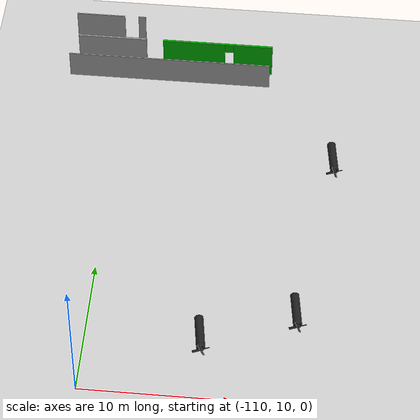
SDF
<sdf version="1.7">
 <world name="default">
  <model name="ground_plane">
   <static>1</static>
   <link name="link">
    <collision name="collision">
     <geometry><plane><normal>0 0 1</normal><size>100 100</size></plane></geometry>
     <surface><friction><ode><mu>100</mu><mu2>50</mu2></ode></friction></surface>
    </collision>
    <visual name="visual">
     <cast_shadows>0</cast_shadows>
     <geometry><plane><normal>0 0 1</normal><size>100 100</size></plane></geometry>
     <material>
      <script><uri>file://media/materials/scripts/gazebo.material</uri><name>Gazebo/Grey</name></script>
     </material>
    </visual>
   </link>
  </model>
  <model name="44444444443osrf_elevator_clone">
   <link name="Wall_10">
    <pose>3.11003 -4.9485 0 0 -0 0</pose>
    <visual name="Wall_10_Visual_0">
     <meta><layer>0</layer></meta>
     <pose>-1.73626 0 1.3715 0 -0 0</pose>
     <geometry><box><size>4.52747 0.15 2.743</size></box></geometry>
     <material>
      <script><uri>file://media/materials/scripts/gazebo.material</uri><name>Gazebo/Grey</name></script>
      <ambient>0 0.666667 0 1</ambient>
      <shader type="pixel"/>
     </material>
    </visual>
    <visual name="Wall_10_Visual_2">
     <meta><layer>0</layer></meta>
     <pose>0.85068 0 2.3715 0 -0 0</pose>
     <geometry><box><size>0.646413 0.15 0.743</size></box></geometry>
     <material>
      <script><uri>file://media/materials/scripts/gazebo.material</uri><name>Gazebo/Grey</name></script>
      <ambient>0 0.666667 0 1</ambient>
      <shader type="pixel"/>
     </material>
    </visual>
    <visual name="Wall_10_Visual_1">
     <meta><layer>0</layer></meta>
     <pose>2.58694 0 1.3715 0 -0 0</pose>
     <geometry><box><size>2.82611 0.15 2.743</size></box></geometry>
     <material>
      <script><uri>file://media/materials/scripts/gazebo.material</uri><name>Gazebo/Grey</name></script>
      <ambient>0 0.666667 0 1</ambient>
      <shader type="pixel"/>
     </material>
    </visual>
    <collision name="Wall_10_Collision_0">
     <pose>-1.73626 0 1.3715 0 -0 0</pose>
     <geometry><box><size>4.52747 0.15 2.743</size></box></geometry>
     <surface>
      <friction>
       <ode><mu>1</mu><mu2>1</mu2><fdir1>0 0 0</fdir1><slip1>0</slip1><slip2>0</slip2></ode>
       <torsional>
        <coefficient>1</coefficient>
        <patch_radius>0</patch_radius>
        <surface_radius>0</surface_radius>
        <use_patch_radius>1</use_patch_radius>
        <ode><slip>0</slip></ode>
       </torsional>
      </friction>
      <bounce><restitution_coefficient>0</restitution_coefficient><threshold>1e+06</threshold></bounce>
      <contact>
       <collide_without_contact>0</collide_without_contact>
       <collide_without_contact_bitmask>1</collide_without_contact_bitmask>
       <collide_bitmask>1</collide_bitmask>
       <ode>
        <soft_cfm>0</soft_cfm>
        <soft_erp>0.2</soft_erp>
        <kp>1e+13</kp>
        <kd>1</kd>
        <max_vel>0.01</max_vel>
        <min_depth>0</min_depth>
       </ode>
       <bullet>
        <split_impulse>1</split_impulse>
        <split_impulse_penetration_threshold>-0.01</split_impulse_penetration_threshold>
        <soft_cfm>0</soft_cfm>
        <soft_erp>0.2</soft_erp>
        <kp>1e+13</kp>
        <kd>1</kd>
       </bullet>
      </contact>
     </surface>
    </collision>
    <collision name="Wall_10_Collision_1">
     <pose>2.58694 0 1.3715 0 -0 0</pose>
     <geometry><box><size>2.82611 0.15 2.743</size></box></geometry>
     <surface>
      <friction>
       <ode><mu>1</mu><mu2>1</mu2><fdir1>0 0 0</fdir1><slip1>0</slip1><slip2>0</slip2></ode>
       <torsional>
        <coefficient>1</coefficient>
        <patch_radius>0</patch_radius>
        <surface_radius>0</surface_radius>
        <use_patch_radius>1</use_patch_radius>
        <ode><slip>0</slip></ode>
       </torsional>
      </friction>
      <bounce><restitution_coefficient>0</restitution_coefficient><threshold>1e+06</threshold></bounce>
      <contact>
       <collide_without_contact>0</collide_without_contact>
       <collide_without_contact_bitmask>1</collide_without_contact_bitmask>
       <collide_bitmask>1</collide_bitmask>
       <ode>
        <soft_cfm>0</soft_cfm>
        <soft_erp>0.2</soft_erp>
        <kp>1e+13</kp>
        <kd>1</kd>
        <max_vel>0.01</max_vel>
        <min_depth>0</min_depth>
       </ode>
       <bullet>
        <split_impulse>1</split_impulse>
        <split_impulse_penetration_threshold>-0.01</split_impulse_penetration_threshold>
        <soft_cfm>0</soft_cfm>
        <soft_erp>0.2</soft_erp>
        <kp>1e+13</kp>
        <kd>1</kd>
       </bullet>
      </contact>
     </surface>
    </collision>
    <collision name="Wall_10_Collision_2">
     <pose>0.85068 0 2.3715 0 -0 0</pose>
     <geometry><box><size>0.646413 0.15 0.743</size></box></geometry>
     <surface>
      <friction>
       <ode><mu>1</mu><mu2>1</mu2><fdir1>0 0 0</fdir1><slip1>0</slip1><slip2>0</slip2></ode>
       <torsional>
        <coefficient>1</coefficient>
        <patch_radius>0</patch_radius>
        <surface_radius>0</surface_radius>
        <use_patch_radius>1</use_patch_radius>
        <ode><slip>0</slip></ode>
       </torsional>
      </friction>
      <bounce><restitution_coefficient>0</restitution_coefficient><threshold>1e+06</threshold></bounce>
      <contact>
       <collide_without_contact>0</collide_without_contact>
       <collide_without_contact_bitmask>1</collide_without_contact_bitmask>
       <collide_bitmask>1</collide_bitmask>
       <ode>
        <soft_cfm>0</soft_cfm>
        <soft_erp>0.2</soft_erp>
        <kp>1e+13</kp>
        <kd>1</kd>
        <max_vel>0.01</max_vel>
        <min_depth>0</min_depth>
       </ode>
       <bullet>
        <split_impulse>1</split_impulse>
        <split_impulse_penetration_threshold>-0.01</split_impulse_penetration_threshold>
        <soft_cfm>0</soft_cfm>
        <soft_erp>0.2</soft_erp>
        <kp>1e+13</kp>
        <kd>1</kd>
       </bullet>
      </contact>
     </surface>
    </collision>
   </link>
   <link name="Wall_18">
    <pose>-4.61297 -4.9275 0 0 -0 3.14159</pose>
    <visual name="Wall_18_Visual">
     <meta><layer>0</layer></meta>
     <pose>0 0 1.3715 0 -0 0</pose>
     <geometry><box><size>5 0.15 2.743</size></box></geometry>
     <material>
      <script><uri>file://media/materials/scripts/gazebo.material</uri><name>Gazebo/Grey</name></script>
      <ambient>1 1 1 1</ambient>
      <shader type="pixel"/>
     </material>
    </visual>
    <collision name="Wall_18_Collision">
     <pose>0 0 1.3715 0 -0 0</pose>
     <geometry><box><size>5 0.15 2.743</size></box></geometry>
     <surface>
      <friction>
       <ode><mu>1</mu><mu2>1</mu2><fdir1>0 0 0</fdir1><slip1>0</slip1><slip2>0</slip2></ode>
       <torsional>
        <coefficient>1</coefficient>
        <patch_radius>0</patch_radius>
        <surface_radius>0</surface_radius>
        <use_patch_radius>1</use_patch_radius>
        <ode><slip>0</slip></ode>
       </torsional>
      </friction>
      <bounce><restitution_coefficient>0</restitution_coefficient><threshold>1e+06</threshold></bounce>
      <contact>
       <collide_without_contact>0</collide_without_contact>
       <collide_without_contact_bitmask>1</collide_without_contact_bitmask>
       <collide_bitmask>1</collide_bitmask>
       <ode>
        <soft_cfm>0</soft_cfm>
        <soft_erp>0.2</soft_erp>
        <kp>1e+13</kp>
        <kd>1</kd>
        <max_vel>0.01</max_vel>
        <min_depth>0</min_depth>
       </ode>
       <bullet>
        <split_impulse>1</split_impulse>
        <split_impulse_penetration_threshold>-0.01</split_impulse_penetration_threshold>
        <soft_cfm>0</soft_cfm>
        <soft_erp>0.2</soft_erp>
        <kp>1e+13</kp>
        <kd>1</kd>
       </bullet>
      </contact>
     </surface>
    </collision>
   </link>
   <link name="floor1_part10">
    <pose>-2.39225 -4.89435 3.85794 1.5708 -0 0</pose>
    <visual name="visual">
     <meta><layer>1</layer></meta>
     <geometry><box><size>0.519866 2.0998 0.078</size></box></geometry>
     <material><script><name>Gazebo/Grey</name><uri>__default__</uri></script><shader type="pixel"/></material>
    </visual>
    <collision name="collision">
     <geometry><box><size>0.519866 2.0998 0.078</size></box></geometry>
     <surface>
      <friction>
       <ode><mu>1</mu><mu2>1</mu2><fdir1>0 0 0</fdir1><slip1>0</slip1><slip2>0</slip2></ode>
       <torsional>
        <coefficient>1</coefficient>
        <patch_radius>0</patch_radius>
        <surface_radius>0</surface_radius>
        <use_patch_radius>1</use_patch_radius>
        <ode><slip>0</slip></ode>
       </torsional>
      </friction>
      <bounce><restitution_coefficient>0</restitution_coefficient><threshold>1e+06</threshold></bounce>
      <contact>
       <collide_without_contact>0</collide_without_contact>
       <collide_without_contact_bitmask>1</collide_without_contact_bitmask>
       <collide_bitmask>1</collide_bitmask>
       <ode>
        <soft_cfm>0</soft_cfm>
        <soft_erp>0.2</soft_erp>
        <kp>1e+13</kp>
        <kd>1</kd>
        <max_vel>0.01</max_vel>
        <min_depth>0</min_depth>
       </ode>
       <bullet>
        <split_impulse>1</split_impulse>
        <split_impulse_penetration_threshold>-0.01</split_impulse_penetration_threshold>
        <soft_cfm>0</soft_cfm>
        <soft_erp>0.2</soft_erp>
        <kp>1e+13</kp>
        <kd>1</kd>
       </bullet>
      </contact>
     </surface>
    </collision>
   </link>
   <link name="floor1_part8">
    <pose>0 -9 3.86461 1.5708 -0 0</pose>
    <visual name="visual">
     <meta><layer>1</layer></meta>
     <geometry><box><size>14.2592 2.0998 0.078</size></box></geometry>
     <material><script><name>Gazebo/Grey</name><uri>__default__</uri></script><shader type="pixel"/></material>
    </visual>
    <collision name="collision">
     <geometry><box><size>14.2592 2.0998 0.078</size></box></geometry>
     <surface>
      <friction>
       <ode><mu>1</mu><mu2>1</mu2><fdir1>0 0 0</fdir1><slip1>0</slip1><slip2>0</slip2></ode>
       <torsional>
        <coefficient>1</coefficient>
        <patch_radius>0</patch_radius>
        <surface_radius>0</surface_radius>
        <use_patch_radius>1</use_patch_radius>
        <ode><slip>0</slip></ode>
       </torsional>
      </friction>
      <bounce><restitution_coefficient>0</restitution_coefficient><threshold>1e+06</threshold></bounce>
      <contact>
       <collide_without_contact>0</collide_without_contact>
       <collide_without_contact_bitmask>1</collide_without_contact_bitmask>
       <collide_bitmask>1</collide_bitmask>
       <ode>
        <soft_cfm>0</soft_cfm>
        <soft_erp>0.2</soft_erp>
        <kp>1e+13</kp>
        <kd>1</kd>
        <max_vel>0.01</max_vel>
        <min_depth>0</min_depth>
       </ode>
       <bullet>
        <split_impulse>1</split_impulse>
        <split_impulse_penetration_threshold>-0.01</split_impulse_penetration_threshold>
        <soft_cfm>0</soft_cfm>
        <soft_erp>0.2</soft_erp>
        <kp>1e+13</kp>
        <kd>1</kd>
       </bullet>
      </contact>
     </surface>
    </collision>
   </link>
   <link name="floor1_part9">
    <pose>-5.36806 -4.90906 3.85794 1.5708 -0 0</pose>
    <visual name="visual">
     <meta><layer>1</layer></meta>
     <geometry><box><size>3.47446 2.0998 0.078</size></box></geometry>
     <material><script><name>Gazebo/Grey</name><uri>__default__</uri></script><shader type="pixel"/></material>
    </visual>
    <collision name="collision">
     <geometry><box><size>3.47446 2.0998 0.078</size></box></geometry>
     <surface>
      <friction>
       <ode><mu>1</mu><mu2>1</mu2><fdir1>0 0 0</fdir1><slip1>0</slip1><slip2>0</slip2></ode>
       <torsional>
        <coefficient>1</coefficient>
        <patch_radius>0</patch_radius>
        <surface_radius>0</surface_radius>
        <use_patch_radius>1</use_patch_radius>
        <ode><slip>0</slip></ode>
       </torsional>
      </friction>
      <bounce><restitution_coefficient>0</restitution_coefficient><threshold>1e+06</threshold></bounce>
      <contact>
       <collide_without_contact>0</collide_without_contact>
       <collide_without_contact_bitmask>1</collide_without_contact_bitmask>
       <collide_bitmask>1</collide_bitmask>
       <ode>
        <soft_cfm>0</soft_cfm>
        <soft_erp>0.2</soft_erp>
        <kp>1e+13</kp>
        <kd>1</kd>
        <max_vel>0.01</max_vel>
        <min_depth>0</min_depth>
       </ode>
       <bullet>
        <split_impulse>1</split_impulse>
        <split_impulse_penetration_threshold>-0.01</split_impulse_penetration_threshold>
        <soft_cfm>0</soft_cfm>
        <soft_erp>0.2</soft_erp>
        <kp>1e+13</kp>
        <kd>1</kd>
       </bullet>
      </contact>
     </surface>
    </collision>
   </link>
   <static>1</static>
   <pose>-106.496 44.2558 0 0 -0 0</pose>
  </model>
  <model name="submarine_sinking_0_clone_11">
   <pose>-102.269 13.8487 0.459063 1.5049 -0.300217 0.160875</pose>
   <link name="body">
    <pose>0 0 -1.07935 0 -0 0</pose>
    <inertial>
     <mass>1102.7</mass>
     <inertia><ixx>645.998</ixx><ixy>0</ixy><ixz>0</ixz><iyy>645.998</iyy><iyz>0</iyz><izz>49.6215</izz></inertia>
    </inertial>
    <visual name="body_visual">
     <geometry><cylinder><radius>0.3</radius><length>2.6</length></cylinder></geometry>
     <material>
      <script><uri>file://media/materials/scripts/gazebo.material</uri><name>Gazebo/Black</name></script>
     </material>
    </visual>
    <collision name="body_collision">
     <geometry><cylinder><radius>0.3</radius><length>2.6</length></cylinder></geometry>
    </collision>
    <visual name="spacer_visual">
     <pose>0 0 1.37855 0 -0 0</pose>
     <geometry><cylinder><radius>0.0933402</radius><length>0.127211</length></cylinder></geometry>
     <material>
      <script><uri>file://media/materials/scripts/gazebo.material</uri><name>Gazebo/Black</name></script>
     </material>
    </visual>
   </link>
   <link name="propeller">
    <pose>0 0 0.3455 3.14159 -0 0</pose>
    <inertial>
     <mass>25.2312</mass>
     <inertia><ixx>0.531907</ixx><ixy>0</ixy><ixz>0</ixz><iyy>0.531907</iyy><iyz>0</iyz><izz>1.0513</izz></inertia>
    </inertial>
    <visual name="blade1_visual">
     <pose>0.34334 0 0 0.785398 -0 0</pose>
     <geometry><box><size>0.5 0.154178 0.05455</size></box></geometry>
     <material>
      <script><uri>file://media/materials/scripts/gazebo.material</uri><name>Gazebo/Black</name></script>
     </material>
    </visual>
    <collision name="blade1_collision">
     <pose>0.34334 0 0 0.785398 -0 0</pose>
     <geometry><box><size>0.5 0.154178 0.05455</size></box></geometry>
    </collision>
    <visual name="blade2_visual">
     <pose>0 0.34334 0 0.785398 0 1.5708</pose>
     <geometry><box><size>0.5 0.154178 0.05455</size></box></geometry>
     <material>
      <script><uri>file://media/materials/scripts/gazebo.material</uri><name>Gazebo/Black</name></script>
     </material>
    </visual>
    <collision name="blade2_collision">
     <pose>0 0.34334 0 0.785398 0 1.5708</pose>
     <geometry><box><size>0.5 0.154178 0.05455</size></box></geometry>
    </collision>
    <visual name="blade3_visual">
     <pose>-0.34334 -0 0 -0.785398 0 0</pose>
     <geometry><box><size>0.5 0.154178 0.05455</size></box></geometry>
     <material>
      <script><uri>file://media/materials/scripts/gazebo.material</uri><name>Gazebo/Black</name></script>
     </material>
    </visual>
    <collision name="blade3_collision">
     <pose>-0.34334 -0 0 -0.785398 0 0</pose>
     <geometry><box><size>0.5 0.154178 0.05455</size></box></geometry>
    </collision>
    <visual name="blade4_visual">
     <pose>-0 -0.34334 0 -0.785398 -0 1.5708</pose>
     <geometry><box><size>0.5 0.154178 0.05455</size></box></geometry>
     <material>
      <script><uri>file://media/materials/scripts/gazebo.material</uri><name>Gazebo/Black</name></script>
     </material>
    </visual>
    <collision name="blade4_collision">
     <pose>-0 -0.34334 0 -0.785398 -0 1.5708</pose>
     <geometry><box><size>0.5 0.154178 0.05455</size></box></geometry>
    </collision>
   </link>
   <joint name="spinning_joint" type="revolute">
    <parent>body</parent>
    <child>propeller</child>
    <axis>
     <xyz expressed_in="__model__">0 0 1</xyz>
     <limit><lower>-1e+12</lower><upper>1e+12</upper><effort>-1</effort><velocity>-1</velocity></limit>
     <dynamics><spring_reference>0</spring_reference><spring_stiffness>0</spring_stiffness></dynamics>
    </axis>
   </joint>
   <plugin name="buoyancy" filename="libBuoyancyPlugin.so"><fluid_density>999.1026</fluid_density></plugin>
  </model>
  <model name="submarine_sinking_0_clone_12">
   <pose>-96.0943 16.2779 0.459061 1.5055 -0.269395 0.151633</pose>
   <link name="body">
    <pose>0 0 -1.07935 0 -0 0</pose>
    <inertial>
     <mass>1102.7</mass>
     <inertia><ixx>645.998</ixx><ixy>0</ixy><ixz>0</ixz><iyy>645.998</iyy><iyz>0</iyz><izz>49.6215</izz></inertia>
    </inertial>
    <visual name="body_visual">
     <geometry><cylinder><radius>0.3</radius><length>2.6</length></cylinder></geometry>
     <material>
      <script><uri>file://media/materials/scripts/gazebo.material</uri><name>Gazebo/Black</name></script>
     </material>
    </visual>
    <collision name="body_collision">
     <geometry><cylinder><radius>0.3</radius><length>2.6</length></cylinder></geometry>
    </collision>
    <visual name="spacer_visual">
     <pose>0 0 1.37855 0 -0 0</pose>
     <geometry><cylinder><radius>0.0933402</radius><length>0.127211</length></cylinder></geometry>
     <material>
      <script><uri>file://media/materials/scripts/gazebo.material</uri><name>Gazebo/Black</name></script>
     </material>
    </visual>
   </link>
   <link name="propeller">
    <pose>0 0 0.3455 3.14159 -0 0</pose>
    <inertial>
     <mass>25.2312</mass>
     <inertia><ixx>0.531907</ixx><ixy>0</ixy><ixz>0</ixz><iyy>0.531907</iyy><iyz>0</iyz><izz>1.0513</izz></inertia>
    </inertial>
    <visual name="blade1_visual">
     <pose>0.34334 0 0 0.785398 -0 0</pose>
     <geometry><box><size>0.5 0.154178 0.05455</size></box></geometry>
     <material>
      <script><uri>file://media/materials/scripts/gazebo.material</uri><name>Gazebo/Black</name></script>
     </material>
    </visual>
    <collision name="blade1_collision">
     <pose>0.34334 0 0 0.785398 -0 0</pose>
     <geometry><box><size>0.5 0.154178 0.05455</size></box></geometry>
    </collision>
    <visual name="blade2_visual">
     <pose>0 0.34334 0 0.785398 0 1.5708</pose>
     <geometry><box><size>0.5 0.154178 0.05455</size></box></geometry>
     <material>
      <script><uri>file://media/materials/scripts/gazebo.material</uri><name>Gazebo/Black</name></script>
     </material>
    </visual>
    <collision name="blade2_collision">
     <pose>0 0.34334 0 0.785398 0 1.5708</pose>
     <geometry><box><size>0.5 0.154178 0.05455</size></box></geometry>
    </collision>
    <visual name="blade3_visual">
     <pose>-0.34334 -0 0 -0.785398 0 0</pose>
     <geometry><box><size>0.5 0.154178 0.05455</size></box></geometry>
     <material>
      <script><uri>file://media/materials/scripts/gazebo.material</uri><name>Gazebo/Black</name></script>
     </material>
    </visual>
    <collision name="blade3_collision">
     <pose>-0.34334 -0 0 -0.785398 0 0</pose>
     <geometry><box><size>0.5 0.154178 0.05455</size></box></geometry>
    </collision>
    <visual name="blade4_visual">
     <pose>-0 -0.34334 0 -0.785398 -0 1.5708</pose>
     <geometry><box><size>0.5 0.154178 0.05455</size></box></geometry>
     <material>
      <script><uri>file://media/materials/scripts/gazebo.material</uri><name>Gazebo/Black</name></script>
     </material>
    </visual>
    <collision name="blade4_collision">
     <pose>-0 -0.34334 0 -0.785398 -0 1.5708</pose>
     <geometry><box><size>0.5 0.154178 0.05455</size></box></geometry>
    </collision>
   </link>
   <joint name="spinning_joint" type="revolute">
    <parent>body</parent>
    <child>propeller</child>
    <axis>
     <xyz expressed_in="__model__">0 0 1</xyz>
     <limit><lower>-1e+12</lower><upper>1e+12</upper><effort>-1</effort><velocity>-1</velocity></limit>
     <dynamics><spring_reference>0</spring_reference><spring_stiffness>0</spring_stiffness></dynamics>
    </axis>
   </joint>
   <plugin name="buoyancy" filename="libBuoyancyPlugin.so"><fluid_density>999.1026</fluid_density></plugin>
  </model>
  <model name="submarine_sinking_0_clone_15">
   <pose>-94.3411 30.0047 0.45906 1.50574 -0.255401 0.146876</pose>
   <link name="body">
    <pose>0 0 -1.07935 0 -0 0</pose>
    <inertial>
     <mass>1102.7</mass>
     <inertia><ixx>645.998</ixx><ixy>0</ixy><ixz>0</ixz><iyy>645.998</iyy><iyz>0</iyz><izz>49.6215</izz></inertia>
    </inertial>
    <visual name="body_visual">
     <geometry><cylinder><radius>0.3</radius><length>2.6</length></cylinder></geometry>
     <material>
      <script><uri>file://media/materials/scripts/gazebo.material</uri><name>Gazebo/Black</name></script>
     </material>
    </visual>
    <collision name="body_collision">
     <geometry><cylinder><radius>0.3</radius><length>2.6</length></cylinder></geometry>
    </collision>
    <visual name="spacer_visual">
     <pose>0 0 1.37855 0 -0 0</pose>
     <geometry><cylinder><radius>0.0933402</radius><length>0.127211</length></cylinder></geometry>
     <material>
      <script><uri>file://media/materials/scripts/gazebo.material</uri><name>Gazebo/Black</name></script>
     </material>
    </visual>
   </link>
   <link name="propeller">
    <pose>0 0 0.3455 3.14159 -0 0</pose>
    <inertial>
     <mass>25.2312</mass>
     <inertia><ixx>0.531907</ixx><ixy>0</ixy><ixz>0</ixz><iyy>0.531907</iyy><iyz>0</iyz><izz>1.0513</izz></inertia>
    </inertial>
    <visual name="blade1_visual">
     <pose>0.34334 0 0 0.785398 -0 0</pose>
     <geometry><box><size>0.5 0.154178 0.05455</size></box></geometry>
     <material>
      <script><uri>file://media/materials/scripts/gazebo.material</uri><name>Gazebo/Black</name></script>
     </material>
    </visual>
    <collision name="blade1_collision">
     <pose>0.34334 0 0 0.785398 -0 0</pose>
     <geometry><box><size>0.5 0.154178 0.05455</size></box></geometry>
    </collision>
    <visual name="blade2_visual">
     <pose>0 0.34334 0 0.785398 0 1.5708</pose>
     <geometry><box><size>0.5 0.154178 0.05455</size></box></geometry>
     <material>
      <script><uri>file://media/materials/scripts/gazebo.material</uri><name>Gazebo/Black</name></script>
     </material>
    </visual>
    <collision name="blade2_collision">
     <pose>0 0.34334 0 0.785398 0 1.5708</pose>
     <geometry><box><size>0.5 0.154178 0.05455</size></box></geometry>
    </collision>
    <visual name="blade3_visual">
     <pose>-0.34334 -0 0 -0.785398 0 0</pose>
     <geometry><box><size>0.5 0.154178 0.05455</size></box></geometry>
     <material>
      <script><uri>file://media/materials/scripts/gazebo.material</uri><name>Gazebo/Black</name></script>
     </material>
    </visual>
    <collision name="blade3_collision">
     <pose>-0.34334 -0 0 -0.785398 0 0</pose>
     <geometry><box><size>0.5 0.154178 0.05455</size></box></geometry>
    </collision>
    <visual name="blade4_visual">
     <pose>-0 -0.34334 0 -0.785398 -0 1.5708</pose>
     <geometry><box><size>0.5 0.154178 0.05455</size></box></geometry>
     <material>
      <script><uri>file://media/materials/scripts/gazebo.material</uri><name>Gazebo/Black</name></script>
     </material>
    </visual>
    <collision name="blade4_collision">
     <pose>-0 -0.34334 0 -0.785398 -0 1.5708</pose>
     <geometry><box><size>0.5 0.154178 0.05455</size></box></geometry>
    </collision>
   </link>
   <joint name="spinning_joint" type="revolute">
    <parent>body</parent>
    <child>propeller</child>
    <axis>
     <xyz expressed_in="__model__">0 0 1</xyz>
     <limit><lower>-1e+12</lower><upper>1e+12</upper><effort>-1</effort><velocity>-1</velocity></limit>
     <dynamics><spring_reference>0</spring_reference><spring_stiffness>0</spring_stiffness></dynamics>
    </axis>
   </joint>
   <plugin name="buoyancy" filename="libBuoyancyPlugin.so"><fluid_density>999.1026</fluid_density></plugin>
  </model>
 </world>
</sdf>
